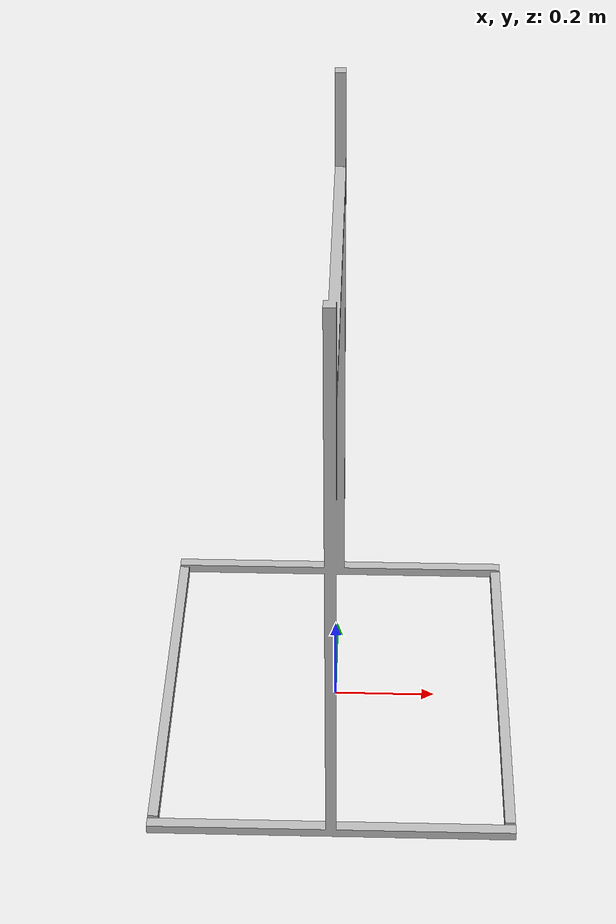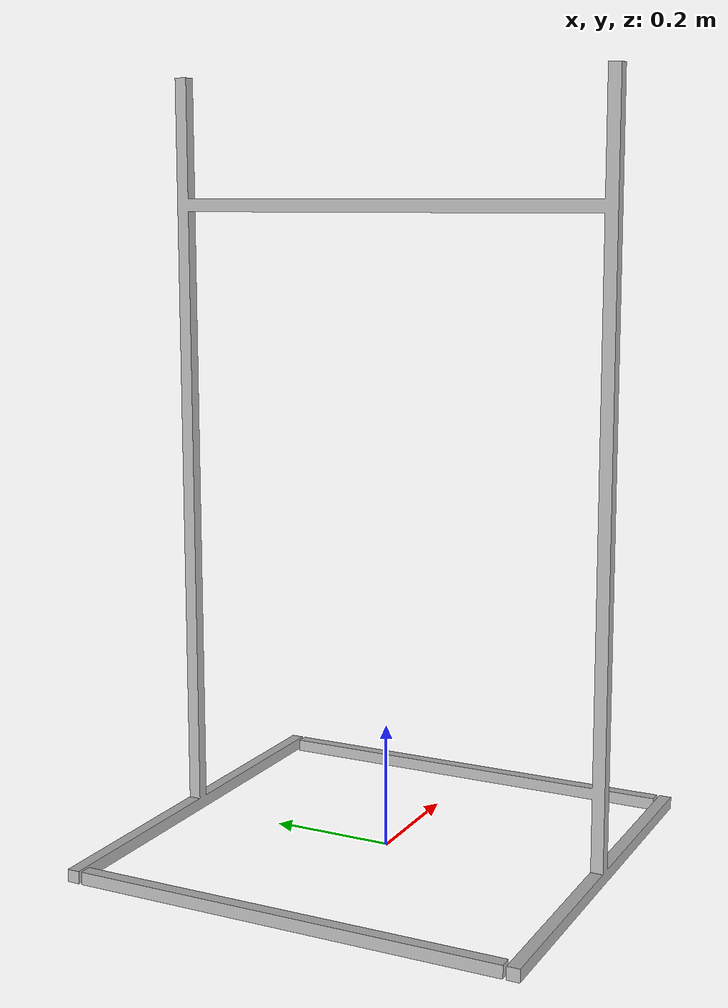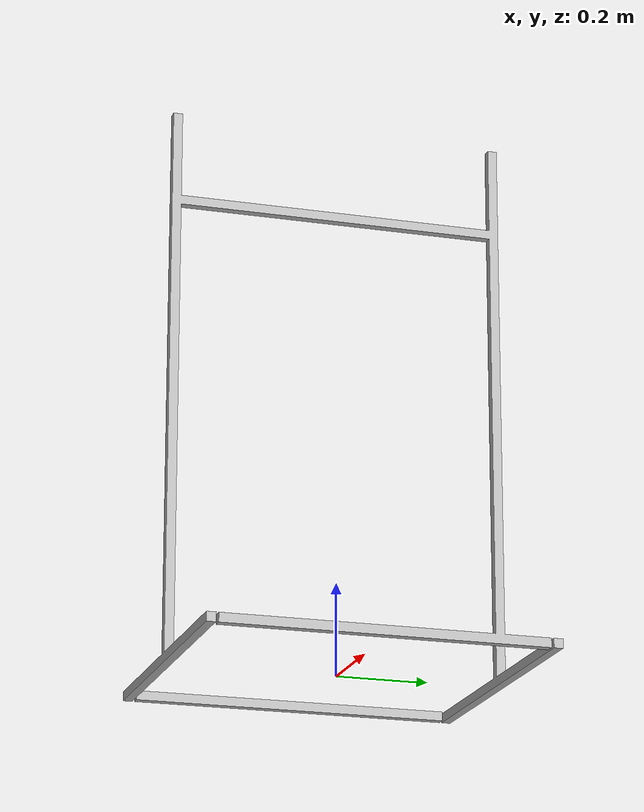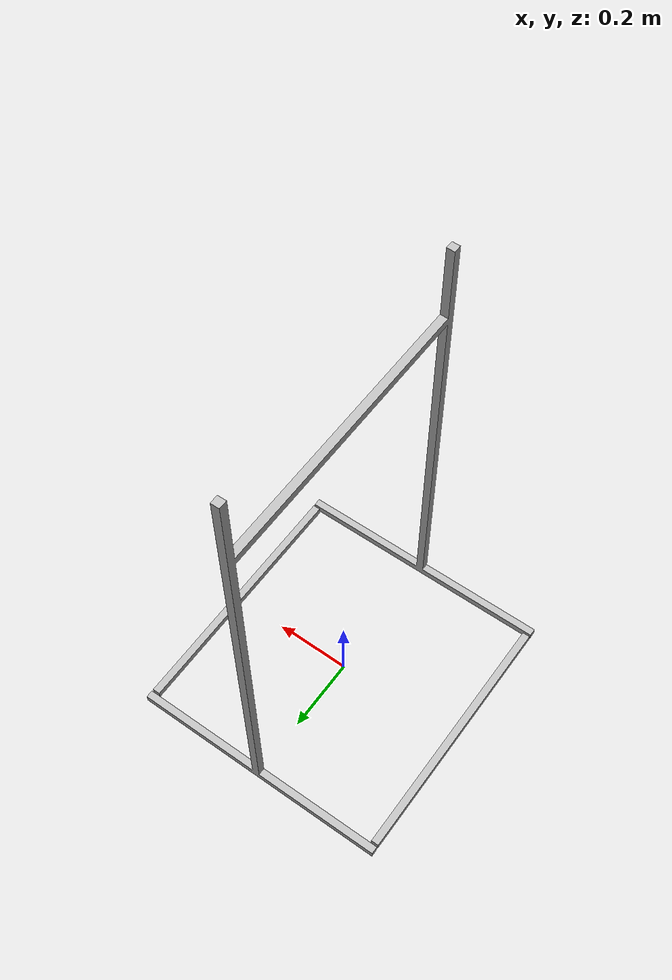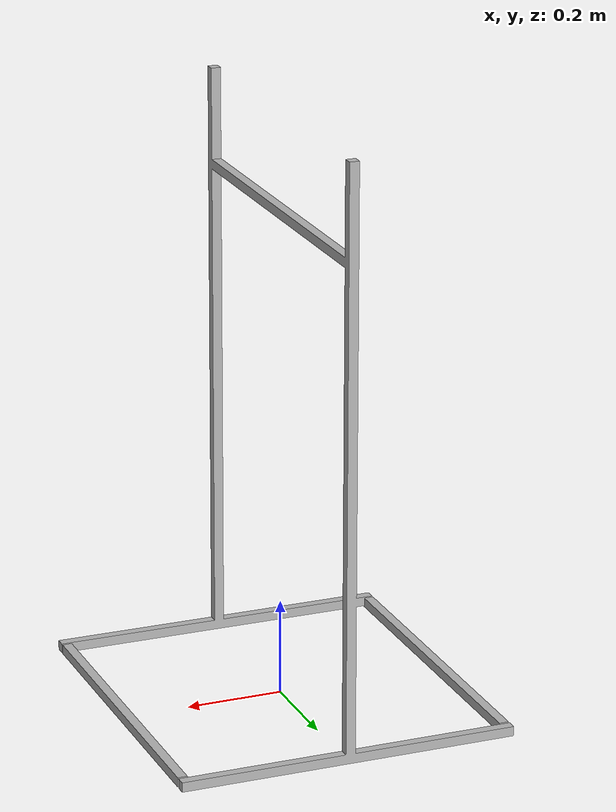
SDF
<?xml version='1.0'?>
<sdf version="1.4">
<model name="toio_mat">
  <pose>0 0 0.002 0 0 0</pose>
    <link name="link">
      <inertial>
        <mass>1.0</mass>
        <inertia>
          <ixx>0.083</ixx>
          <ixy>0.0</ixy>
          <ixz>0.0</ixz>
          <iyy>0.083</iyy>
          <iyz>0.0</iyz>
          <izz>0.083</izz>
        </inertia>
      </inertial>
      <collision name="collision">
        <geometry>
          <mesh>
            <uri>model://toio_frame/mesh/toio_frame.stl</uri>
          </mesh>
        </geometry>
      </collision>
      <visual name="visual">
        <geometry>
          <mesh>
            <uri>model://toio_frame/mesh/toio_frame.stl</uri>
          </mesh>
        </geometry>
        <material>
          <script>
            <uri>model://toio_mat/materials/toio_texture.material</uri>
            <name>ToioTexture</name>
          </script>
        </material>
      </visual>
    </link>
  </model>
</sdf>
